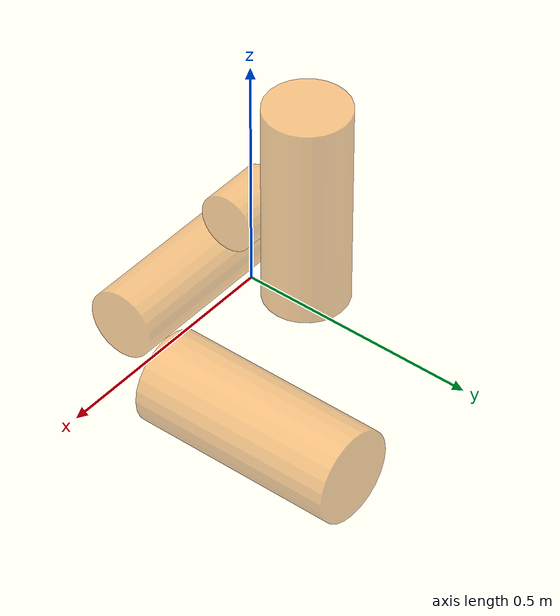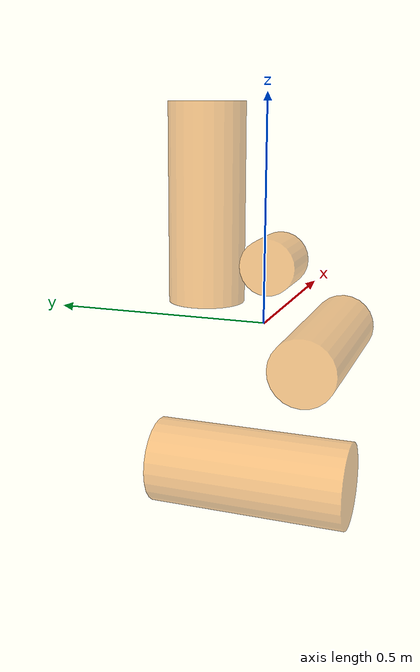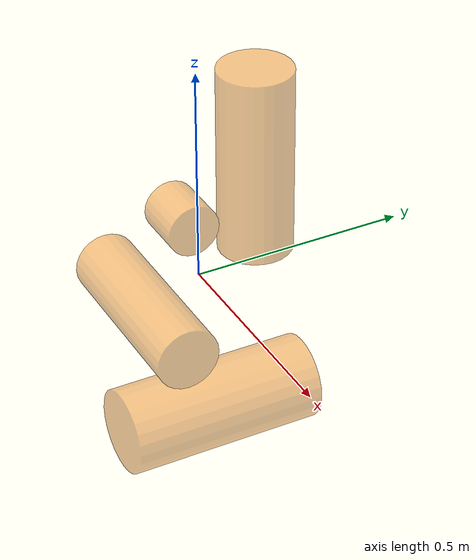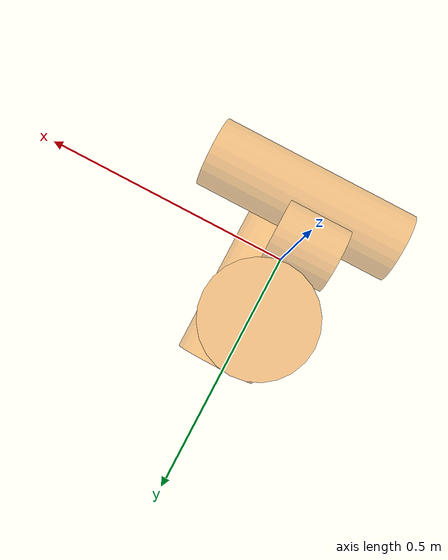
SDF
<?xml version='1.0'?>
<sdf version='1.7'>
  <model name='robot_collid'>
    <link name='Link2'>
      <inertial>
        <mass>1</mass>
        <inertia>
          <ixx>0.145833</ixx>
          <ixy>0</ixy>
          <ixz>0</ixz>
          <iyy>0.145833</iyy>
          <iyz>0</iyz>
          <izz>0.125</izz>
        </inertia>
        <pose>0 0 0 0 -0 0</pose>
      </inertial>
      <pose>0.008 0.026214 -0.35966 0 -0 0</pose>
      <gravity>0</gravity>
      <self_collide>0</self_collide>
      <kinematic>0</kinematic>
      <enable_wind>0</enable_wind>
      <visual name='visual'>
        <pose>0 0 0 1.570796 0 0</pose>
        <geometry>
          <cylinder>
            <radius>0.1</radius>
            <length>0.46</length>
          </cylinder>
        </geometry>
        <material>
          <lighting>1</lighting>
          <script>
            <uri>file://media/materials/scripts/gazebo.material</uri>
            <name>Gazebo/Orange</name>
          </script>
          <shader type='pixel'>
            <normal_map>__default__</normal_map>
          </shader>
          <ambient>0.3 0.3 0.3 1</ambient>
          <diffuse>0.7 0.7 0.7 1</diffuse>
          <specular>0.157 0.651 0.863 1</specular>
          <emissive>0.157 0.651 0.863 1</emissive>
        </material>
        <transparency>0.5</transparency>
        <cast_shadows>1</cast_shadows>
      </visual>
    </link>
    <link name='Link3'>
      <inertial>
        <mass>1</mass>
        <inertia>
          <ixx>0.145833</ixx>
          <ixy>0</ixy>
          <ixz>0</ixz>
          <iyy>0.145833</iyy>
          <iyz>0</iyz>
          <izz>0.125</izz>
        </inertia>
        <pose>0 0 0 0 -0 0</pose>
      </inertial>
      <pose>0.009422 -0.135394 -0.043294 0 -0 0</pose>
      <gravity>0</gravity>
      <self_collide>0</self_collide>
      <kinematic>0</kinematic>
      <enable_wind>0</enable_wind>
      <visual name='visual'>
        <pose>0 0 0 0 1.570796 0</pose>
        <geometry>
          <cylinder>
            <radius>0.072</radius>
            <length>0.42</length>
          </cylinder>
        </geometry>
        <material>
          <lighting>1</lighting>
          <script>
            <uri>file://media/materials/scripts/gazebo.material</uri>
            <name>Gazebo/Orange</name>
          </script>
          <shader type='pixel'>
            <normal_map>__default__</normal_map>
          </shader>
          <ambient>0.3 0.3 0.3 1</ambient>
          <diffuse>0.7 0.7 0.7 1</diffuse>
          <specular>0.01 0.01 0.01 1</specular>
          <emissive>0.157 0.651 0.863 1</emissive>
        </material>
        <transparency>0.5</transparency>
        <cast_shadows>1</cast_shadows>
      </visual>
    </link>
    <link name='Link4'>
      <inertial>
        <mass>1</mass>
        <inertia>
          <ixx>0.145833</ixx>
          <ixy>0</ixy>
          <ixz>0</ixz>
          <iyy>0.145833</iyy>
          <iyz>0</iyz>
          <izz>0.125</izz>
        </inertia>
        <pose>0 0 0 0 -0 0</pose>
      </inertial>
      <pose>-0.023065 -0.02761 0.141608 0 0 0</pose>
      <gravity>0</gravity>
      <self_collide>0</self_collide>
      <kinematic>0</kinematic>
      <enable_wind>0</enable_wind>
      <visual name='visual'>
        <pose>0 0 0 0 1.570796 0</pose>
        <geometry>
          <cylinder>
            <radius>0.06</radius>
            <length>0.12</length>
          </cylinder>
        </geometry>
        <material>
          <lighting>1</lighting>
          <script>
            <uri>file://media/materials/scripts/gazebo.material</uri>
            <name>Gazebo/Orange</name>
          </script>
          <shader type='pixel'>
            <normal_map>__default__</normal_map>
          </shader>
          <ambient>0.3 0.3 0.3 1</ambient>
          <diffuse>0.7 0.7 0.7 1</diffuse>
          <specular>0.01 0.01 0.01 1</specular>
          <emissive>0.157 0.651 0.863 1</emissive>
        </material>
        <transparency>0.5</transparency>
        <cast_shadows>1</cast_shadows>
      </visual>
    </link>
    <link name='Link5'>
      <inertial>
        <mass>1</mass>
        <inertia>
          <ixx>0.145833</ixx>
          <ixy>0</ixy>
          <ixz>0</ixz>
          <iyy>0.145833</iyy>
          <iyz>0</iyz>
          <izz>0.125</izz>
        </inertia>
        <pose>0 0 0 0 -0 0</pose>
      </inertial>
      <pose>0.005642 0.13679 0.261347 1.57 -0 0</pose>
      <gravity>0</gravity>
      <self_collide>0</self_collide>
      <kinematic>0</kinematic>
      <enable_wind>0</enable_wind>
      <visual name='visual'>
        <pose>0 0 0  1.570796 0 0</pose>
        <geometry>
          <cylinder>
            <radius>0.085</radius>
            <length>0.44</length>
          </cylinder>
        </geometry>
        <material>
          <lighting>1</lighting>
          <script>
            <uri>file://media/materials/scripts/gazebo.material</uri>
            <name>Gazebo/Orange</name>
          </script>
          <shader type='pixel'>
            <normal_map>__default__</normal_map>
          </shader>
          <ambient>0.157 0.651 0.863 1</ambient>
          <diffuse>0.7 0.7 0.7 1</diffuse>
          <specular>0.01 0.01 0.01 1</specular>
          <emissive>0.157 0.651 0.863 1</emissive>
        </material>
        <transparency>0.5</transparency>
        <cast_shadows>1</cast_shadows>
      </visual>
    </link>
    <static>0</static>
    <allow_auto_disable>1</allow_auto_disable>
  </model>
</sdf>
